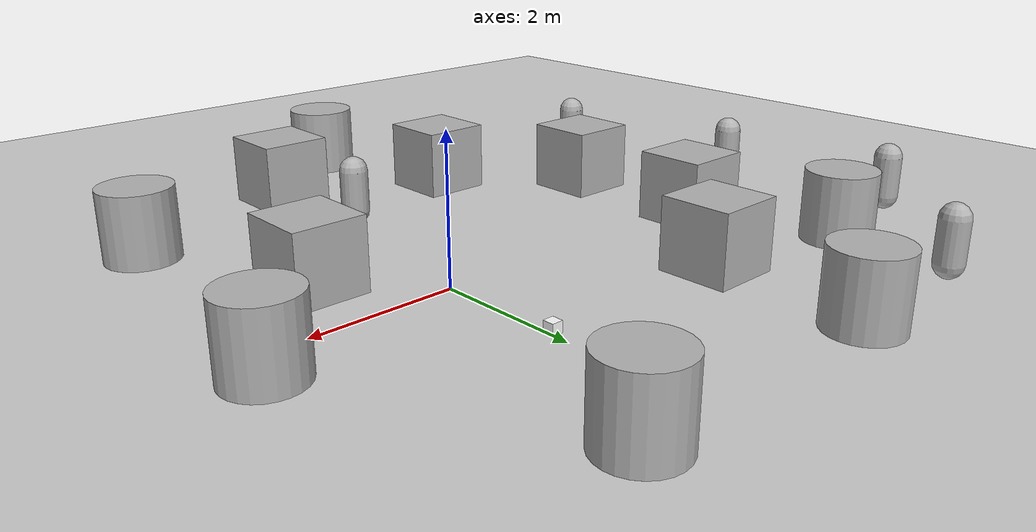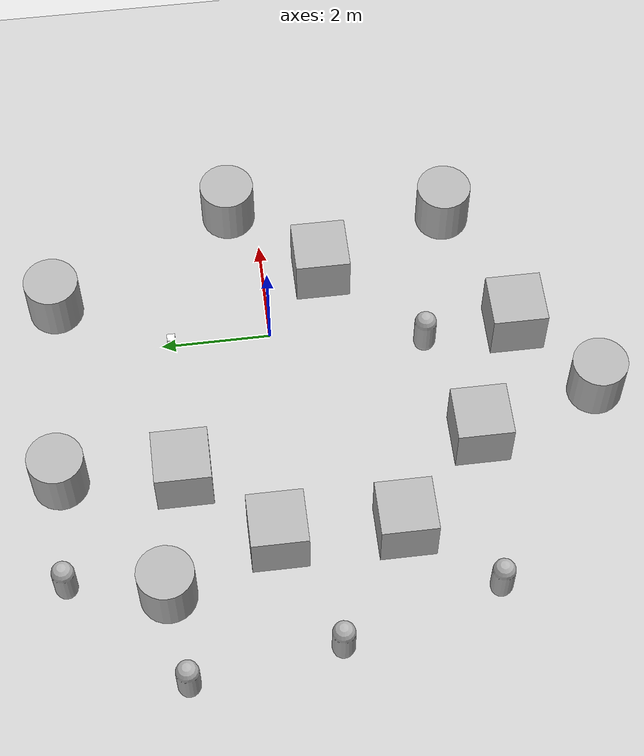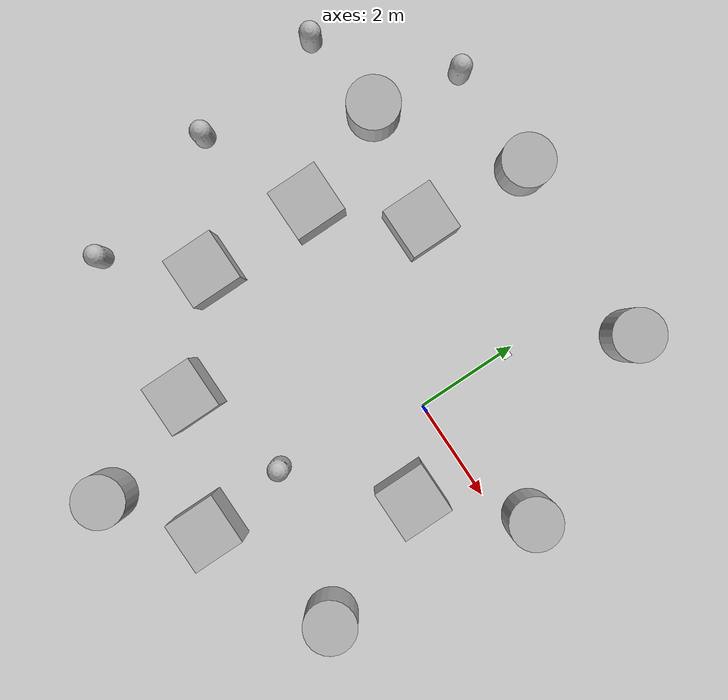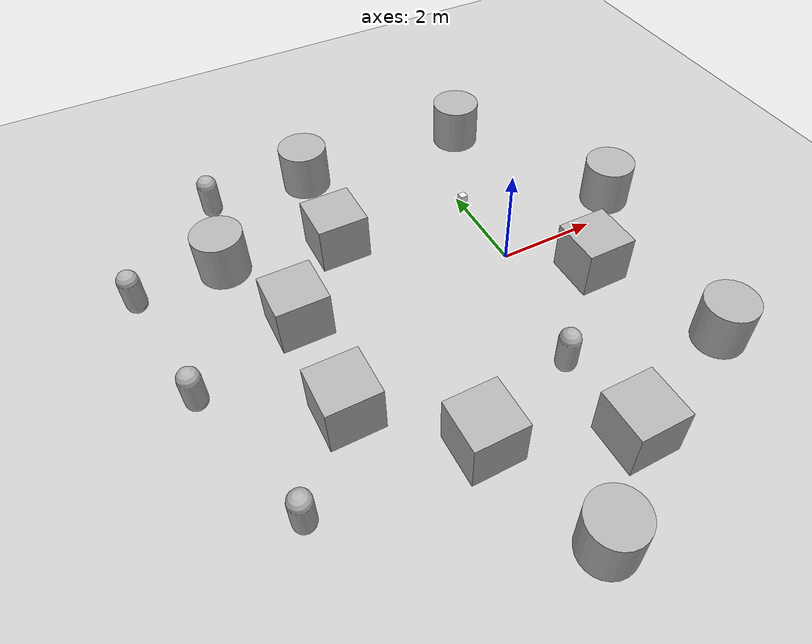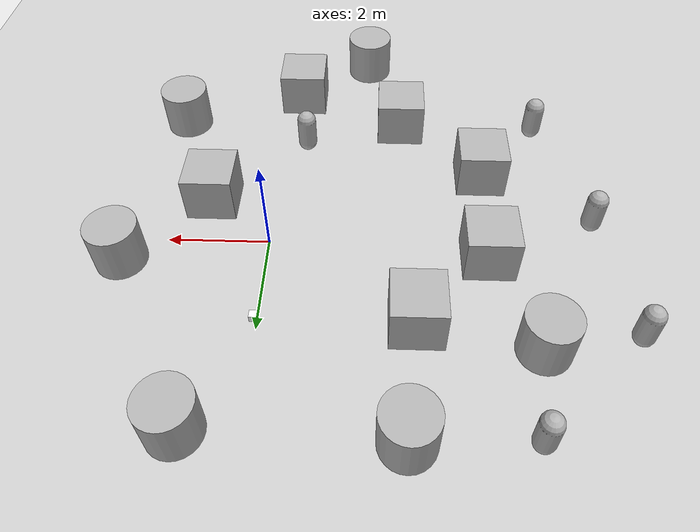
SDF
<sdf version='1.8'>
  <world name='empty'>
    <physics name='1ms' type='ignored'>
      <max_step_size>0.001</max_step_size>
      <real_time_factor>1</real_time_factor>
      <real_time_update_rate>1000</real_time_update_rate>
    </physics>
    <plugin
      filename="libignition-gazebo-physics-system.so"
      name="ignition::gazebo::systems::Physics">
    </plugin>
    <plugin
      filename="libignition-gazebo-user-commands-system.so"
      name="ignition::gazebo::systems::UserCommands">
    </plugin>
    <plugin
      filename="libignition-gazebo-scene-broadcaster-system.so"
      name="ignition::gazebo::systems::SceneBroadcaster">
    </plugin>
    <plugin
      filename="ignition-gazebo-imu-system"
      name="ignition::gazebo::systems::Imu">
    </plugin>
    <plugin
      filename="ignition-gazebo-sensors-system"
      name="ignition::gazebo::systems::Sensors">
      <render_engine>ogre2</render_engine>
    </plugin>
    <gravity>0 0 -9.8</gravity>
    <magnetic_field>6e-06 2.3e-05 -4.2e-05</magnetic_field>
    <atmosphere type='adiabatic'/>
    <scene>
      <ambient>0.4 0.4 0.4 1</ambient>
      <background>0.7 0.7 0.7 1</background>
      <shadows>true</shadows>
    </scene>
    <model name='ground_plane'>
      <static>true</static>
      <link name='link'>
        <collision name='collision'>
          <geometry>
            <plane>
              <normal>0 0 1</normal>
              <size>100 100</size>
            </plane>
          </geometry>
          <surface>
            <friction>
              <ode/>
            </friction>
            <bounce/>
            <contact/>
          </surface>
        </collision>
        <visual name='visual'>
          <geometry>
            <plane>
              <normal>0 0 1</normal>
              <size>100 100</size>
            </plane>
          </geometry>
          <material>
            <ambient>0.8 0.8 0.8 1</ambient>
            <diffuse>0.8 0.8 0.8 1</diffuse>
            <specular>0.8 0.8 0.8 1</specular>
          </material>
        </visual>
        <pose>0 0 0 0 -0 0</pose>
        <inertial>
          <pose>0 0 0 0 -0 0</pose>
          <mass>1</mass>
          <inertia>
            <ixx>1</ixx>
            <ixy>0</ixy>
            <ixz>0</ixz>
            <iyy>1</iyy>
            <iyz>0</iyz>
            <izz>1</izz>
          </inertia>
        </inertial>
        <enable_wind>false</enable_wind>
      </link>
      <pose>0 0 0 0 -0 0</pose>
      <self_collide>false</self_collide>
    </model>
    <model name='dock_box'>
      <pose>0.052212 1.82261 0.15 -0 0 0</pose>
      <link name='box_link'>
        <inertial>
          <inertia>
            <ixx>0.16666</ixx>
            <ixy>0</ixy>
            <ixz>0</ixz>
            <iyy>0.16666</iyy>
            <iyz>0</iyz>
            <izz>0.16666</izz>
          </inertia>
          <mass>1</mass>
          <pose>0 0 0 0 -0 0</pose>
        </inertial>
        <collision name='box_collision'>
          <geometry>
            <box>
              <size>0.15 0.15  0.15</size>
            </box>
          </geometry>
          <surface>
            <friction>
              <ode/>
            </friction>
            <bounce/>
            <contact/>
          </surface>
        </collision>
        <visual name='box_visual'>
          <geometry>
            <box>
              <size>0.15 0.15  0.15</size>
            </box>
          </geometry>
          <!-- ArUco marker ID 0 texture — dock target face -->
          <material>
            <ambient>1 1 1 1</ambient>
            <diffuse>1 1 1 1</diffuse>
            <specular>0.1 0.1 0.1 1</specular>
            <pbr>
              <metal>
                <albedo_map>/home/salah/Storage/ros2-test/src/yahboomcar_control_bringup/worlds/dock_marker.png</albedo_map>
                <metalness>0.0</metalness>
                <roughness>1.0</roughness>
              </metal>
            </pbr>
          </material>
        </visual>
        <pose>0 0 0 0 -0 0</pose>
        <enable_wind>false</enable_wind>
      </link>
      <static>true</static>
      <self_collide>false</self_collide>
    </model>
    <model name='box_2'>
      <pose>-2.84392 1.83052 0.5 0 -0 0</pose>
      <link name='box_link'>
        <inertial>
          <inertia>
            <ixx>0.16666</ixx>
            <ixy>0</ixy>
            <ixz>0</ixz>
            <iyy>0.16666</iyy>
            <iyz>0</iyz>
            <izz>0.16666</izz>
          </inertia>
          <mass>1</mass>
          <pose>0 0 0 0 -0 0</pose>
        </inertial>
        <collision name='box_collision'>
          <geometry>
            <box>
              <size>1 1 1</size>
            </box>
          </geometry>
          <surface>
            <friction>
              <ode/>
            </friction>
            <bounce/>
            <contact/>
          </surface>
        </collision>
        <visual name='box_visual'>
          <geometry>
            <box>
              <size>1 1 1</size>
            </box>
          </geometry>
          <material>
            <ambient>0.3 0.3 0.3 1</ambient>
            <diffuse>0.7 0.7 0.7 1</diffuse>
            <specular>1 1 1 1</specular>
          </material>
        </visual>
        <pose>0 0 0 0 -0 0</pose>
        <enable_wind>false</enable_wind>
      </link>
      <static>true</static>
      <self_collide>false</self_collide>
    </model>
    <model name='box_3'>
      <pose>-4.25235 0.303162 0.5 0 -0 0</pose>
      <link name='box_link'>
        <inertial>
          <inertia>
            <ixx>0.16666</ixx>
            <ixy>0</ixy>
            <ixz>0</ixz>
            <iyy>0.16666</iyy>
            <iyz>0</iyz>
            <izz>0.16666</izz>
          </inertia>
          <mass>1</mass>
          <pose>0 0 0 0 -0 0</pose>
        </inertial>
        <collision name='box_collision'>
          <geometry>
            <box>
              <size>1 1 1</size>
            </box>
          </geometry>
          <surface>
            <friction>
              <ode/>
            </friction>
            <bounce/>
            <contact/>
          </surface>
        </collision>
        <visual name='box_visual'>
          <geometry>
            <box>
              <size>1 1 1</size>
            </box>
          </geometry>
          <material>
            <ambient>0.3 0.3 0.3 1</ambient>
            <diffuse>0.7 0.7 0.7 1</diffuse>
            <specular>1 1 1 1</specular>
          </material>
        </visual>
        <pose>0 0 0 0 -0 0</pose>
        <enable_wind>false</enable_wind>
      </link>
      <static>true</static>
      <self_collide>false</self_collide>
    </model>
    <model name='box_4'>
      <pose>-4.2816 -1.91338 0.5 0 -0 0</pose>
      <link name='box_link'>
        <inertial>
          <inertia>
            <ixx>0.16666</ixx>
            <ixy>0</ixy>
            <ixz>0</ixz>
            <iyy>0.16666</iyy>
            <iyz>0</iyz>
            <izz>0.16666</izz>
          </inertia>
          <mass>1</mass>
          <pose>0 0 0 0 -0 0</pose>
        </inertial>
        <collision name='box_collision'>
          <geometry>
            <box>
              <size>1 1 1</size>
            </box>
          </geometry>
          <surface>
            <friction>
              <ode/>
            </friction>
            <bounce/>
            <contact/>
          </surface>
        </collision>
        <visual name='box_visual'>
          <geometry>
            <box>
              <size>1 1 1</size>
            </box>
          </geometry>
          <material>
            <ambient>0.3 0.3 0.3 1</ambient>
            <diffuse>0.7 0.7 0.7 1</diffuse>
            <specular>1 1 1 1</specular>
          </material>
        </visual>
        <pose>0 0 0 0 -0 0</pose>
        <enable_wind>false</enable_wind>
      </link>
      <static>true</static>
      <self_collide>false</self_collide>
    </model>
    <model name='box_5'>
      <pose>-2.60351 -3.49289 0.5 0 -0 0</pose>
      <link name='box_link'>
        <inertial>
          <inertia>
            <ixx>0.16666</ixx>
            <ixy>0</ixy>
            <ixz>0</ixz>
            <iyy>0.16666</iyy>
            <iyz>0</iyz>
            <izz>0.16666</izz>
          </inertia>
          <mass>1</mass>
          <pose>0 0 0 0 -0 0</pose>
        </inertial>
        <collision name='box_collision'>
          <geometry>
            <box>
              <size>1 1 1</size>
            </box>
          </geometry>
          <surface>
            <friction>
              <ode/>
            </friction>
            <bounce/>
            <contact/>
          </surface>
        </collision>
        <visual name='box_visual'>
          <geometry>
            <box>
              <size>1 1 1</size>
            </box>
          </geometry>
          <material>
            <ambient>0.3 0.3 0.3 1</ambient>
            <diffuse>0.7 0.7 0.7 1</diffuse>
            <specular>1 1 1 1</specular>
          </material>
        </visual>
        <pose>0 0 0 0 -0 0</pose>
        <enable_wind>false</enable_wind>
      </link>
      <static>true</static>
      <self_collide>false</self_collide>
    </model>
    <model name='box_6'>
      <pose>-0.350811 -4.4993 0.5 0 -0 0</pose>
      <link name='box_link'>
        <inertial>
          <inertia>
            <ixx>0.16666</ixx>
            <ixy>0</ixy>
            <ixz>0</ixz>
            <iyy>0.16666</iyy>
            <iyz>0</iyz>
            <izz>0.16666</izz>
          </inertia>
          <mass>1</mass>
          <pose>0 0 0 0 -0 0</pose>
        </inertial>
        <collision name='box_collision'>
          <geometry>
            <box>
              <size>1 1 1</size>
            </box>
          </geometry>
          <surface>
            <friction>
              <ode/>
            </friction>
            <bounce/>
            <contact/>
          </surface>
        </collision>
        <visual name='box_visual'>
          <geometry>
            <box>
              <size>1 1 1</size>
            </box>
          </geometry>
          <material>
            <ambient>0.3 0.3 0.3 1</ambient>
            <diffuse>0.7 0.7 0.7 1</diffuse>
            <specular>1 1 1 1</specular>
          </material>
        </visual>
        <pose>0 0 0 0 -0 0</pose>
        <enable_wind>false</enable_wind>
      </link>
      <static>true</static>
      <self_collide>false</self_collide>
    </model>
    <model name='box_7'>
      <pose>1.25544 -1.09131 0.5 0 -0 0</pose>
      <link name='box_link'>
        <inertial>
          <inertia>
            <ixx>0.16666</ixx>
            <ixy>0</ixy>
            <ixz>0</ixz>
            <iyy>0.16666</iyy>
            <iyz>0</iyz>
            <izz>0.16666</izz>
          </inertia>
          <mass>1</mass>
          <pose>0 0 0 0 -0 0</pose>
        </inertial>
        <collision name='box_collision'>
          <geometry>
            <box>
              <size>1 1 1</size>
            </box>
          </geometry>
          <surface>
            <friction>
              <ode/>
            </friction>
            <bounce/>
            <contact/>
          </surface>
        </collision>
        <visual name='box_visual'>
          <geometry>
            <box>
              <size>1 1 1</size>
            </box>
          </geometry>
          <material>
            <ambient>0.3 0.3 0.3 1</ambient>
            <diffuse>0.7 0.7 0.7 1</diffuse>
            <specular>1 1 1 1</specular>
          </material>
        </visual>
        <pose>0 0 0 0 -0 0</pose>
        <enable_wind>false</enable_wind>
      </link>
      <static>true</static>
      <self_collide>false</self_collide>
    </model>
    <model name='cylinder'>
      <pose>-1.86361 -5.74408 0.5 0 -0 0</pose>
      <link name='cylinder_link'>
        <inertial>
          <inertia>
            <ixx>0.14580000000000001</ixx>
            <ixy>0</ixy>
            <ixz>0</ixz>
            <iyy>0.14580000000000001</iyy>
            <iyz>0</iyz>
            <izz>0.125</izz>
          </inertia>
          <mass>1</mass>
          <pose>0 0 0 0 -0 0</pose>
        </inertial>
        <collision name='cylinder_collision'>
          <geometry>
            <cylinder>
              <radius>0.5</radius>
              <length>1</length>
            </cylinder>
          </geometry>
          <surface>
            <friction>
              <ode/>
            </friction>
            <bounce/>
            <contact/>
          </surface>
        </collision>
        <visual name='cylinder_visual'>
          <geometry>
            <cylinder>
              <radius>0.5</radius>
              <length>1</length>
            </cylinder>
          </geometry>
          <material>
            <ambient>0.3 0.3 0.3 1</ambient>
            <diffuse>0.7 0.7 0.7 1</diffuse>
            <specular>1 1 1 1</specular>
          </material>
        </visual>
        <pose>0 0 0 0 -0 0</pose>
        <enable_wind>false</enable_wind>
      </link>
      <static>true</static>
      <self_collide>false</self_collide>
    </model>
    <model name='cylinder_1'>
      <pose>2.2825 -3.56326 0.5 0 -0 0</pose>
      <link name='cylinder_link'>
        <inertial>
          <inertia>
            <ixx>0.14580000000000001</ixx>
            <ixy>0</ixy>
            <ixz>0</ixz>
            <iyy>0.14580000000000001</iyy>
            <iyz>0</iyz>
            <izz>0.125</izz>
          </inertia>
          <mass>1</mass>
          <pose>0 0 0 0 -0 0</pose>
        </inertial>
        <collision name='cylinder_collision'>
          <geometry>
            <cylinder>
              <radius>0.5</radius>
              <length>1</length>
            </cylinder>
          </geometry>
          <surface>
            <friction>
              <ode/>
            </friction>
            <bounce/>
            <contact/>
          </surface>
        </collision>
        <visual name='cylinder_visual'>
          <geometry>
            <cylinder>
              <radius>0.5</radius>
              <length>1</length>
            </cylinder>
          </geometry>
          <material>
            <ambient>0.3 0.3 0.3 1</ambient>
            <diffuse>0.7 0.7 0.7 1</diffuse>
            <specular>1 1 1 1</specular>
          </material>
        </visual>
        <pose>0 0 0 0 -0 0</pose>
        <enable_wind>false</enable_wind>
      </link>
      <static>true</static>
      <self_collide>false</self_collide>
    </model>
    <model name='cylinder_2'>
      <pose>2.79456 0.506797 0.5 0 -0 0</pose>
      <link name='cylinder_link'>
        <inertial>
          <inertia>
            <ixx>0.14580000000000001</ixx>
            <ixy>0</ixy>
            <ixz>0</ixz>
            <iyy>0.14580000000000001</iyy>
            <iyz>0</iyz>
            <izz>0.125</izz>
          </inertia>
          <mass>1</mass>
          <pose>0 0 0 0 -0 0</pose>
        </inertial>
        <collision name='cylinder_collision'>
          <geometry>
            <cylinder>
              <radius>0.5</radius>
              <length>1</length>
            </cylinder>
          </geometry>
          <surface>
            <friction>
              <ode/>
            </friction>
            <bounce/>
            <contact/>
          </surface>
        </collision>
        <visual name='cylinder_visual'>
          <geometry>
            <cylinder>
              <radius>0.5</radius>
              <length>1</length>
            </cylinder>
          </geometry>
          <material>
            <ambient>0.3 0.3 0.3 1</ambient>
            <diffuse>0.7 0.7 0.7 1</diffuse>
            <specular>1 1 1 1</specular>
          </material>
        </visual>
        <pose>0 0 0 0 -0 0</pose>
        <enable_wind>false</enable_wind>
      </link>
      <static>true</static>
      <self_collide>false</self_collide>
    </model>
    <model name='cylinder_3'>
      <pose>1.0244 3.89878 0.5 0 -0 0</pose>
      <link name='cylinder_link'>
        <inertial>
          <inertia>
            <ixx>0.14580000000000001</ixx>
            <ixy>0</ixy>
            <ixz>0</ixz>
            <iyy>0.14580000000000001</iyy>
            <iyz>0</iyz>
            <izz>0.125</izz>
          </inertia>
          <mass>1</mass>
          <pose>0 0 0 0 -0 0</pose>
        </inertial>
        <collision name='cylinder_collision'>
          <geometry>
            <cylinder>
              <radius>0.5</radius>
              <length>1</length>
            </cylinder>
          </geometry>
          <surface>
            <friction>
              <ode/>
            </friction>
            <bounce/>
            <contact/>
          </surface>
        </collision>
        <visual name='cylinder_visual'>
          <geometry>
            <cylinder>
              <radius>0.5</radius>
              <length>1</length>
            </cylinder>
          </geometry>
          <material>
            <ambient>0.3 0.3 0.3 1</ambient>
            <diffuse>0.7 0.7 0.7 1</diffuse>
            <specular>1 1 1 1</specular>
          </material>
        </visual>
        <pose>0 0 0 0 -0 0</pose>
        <enable_wind>false</enable_wind>
      </link>
      <static>true</static>
      <self_collide>false</self_collide>
    </model>
    <model name='cylinder_4'>
      <pose>-2.6529 3.99508 0.5 0 -0 0</pose>
      <link name='cylinder_link'>
        <inertial>
          <inertia>
            <ixx>0.14580000000000001</ixx>
            <ixy>0</ixy>
            <ixz>0</ixz>
            <iyy>0.14580000000000001</iyy>
            <iyz>0</iyz>
            <izz>0.125</izz>
          </inertia>
          <mass>1</mass>
          <pose>0 0 0 0 -0 0</pose>
        </inertial>
        <collision name='cylinder_collision'>
          <geometry>
            <cylinder>
              <radius>0.5</radius>
              <length>1</length>
            </cylinder>
          </geometry>
          <surface>
            <friction>
              <ode/>
            </friction>
            <bounce/>
            <contact/>
          </surface>
        </collision>
        <visual name='cylinder_visual'>
          <geometry>
            <cylinder>
              <radius>0.5</radius>
              <length>1</length>
            </cylinder>
          </geometry>
          <material>
            <ambient>0.3 0.3 0.3 1</ambient>
            <diffuse>0.7 0.7 0.7 1</diffuse>
            <specular>1 1 1 1</specular>
          </material>
        </visual>
        <pose>0 0 0 0 -0 0</pose>
        <enable_wind>false</enable_wind>
      </link>
      <static>true</static>
      <self_collide>false</self_collide>
    </model>
    <model name='cylinder_5'>
      <pose>-5.03786 2.2708 0.5 0 -0 0</pose>
      <link name='cylinder_link'>
        <inertial>
          <inertia>
            <ixx>0.14580000000000001</ixx>
            <ixy>0</ixy>
            <ixz>0</ixz>
            <iyy>0.14580000000000001</iyy>
            <iyz>0</iyz>
            <izz>0.125</izz>
          </inertia>
          <mass>1</mass>
          <pose>0 0 0 0 -0 0</pose>
        </inertial>
        <collision name='cylinder_collision'>
          <geometry>
            <cylinder>
              <radius>0.5</radius>
              <length>1</length>
            </cylinder>
          </geometry>
          <surface>
            <friction>
              <ode/>
            </friction>
            <bounce/>
            <contact/>
          </surface>
        </collision>
        <visual name='cylinder_visual'>
          <geometry>
            <cylinder>
              <radius>0.5</radius>
              <length>1</length>
            </cylinder>
          </geometry>
          <material>
            <ambient>0.3 0.3 0.3 1</ambient>
            <diffuse>0.7 0.7 0.7 1</diffuse>
            <specular>1 1 1 1</specular>
          </material>
        </visual>
        <pose>0 0 0 0 -0 0</pose>
        <enable_wind>false</enable_wind>
      </link>
      <static>true</static>
      <self_collide>false</self_collide>
    </model>
    <model name='capsule_1'>
      <pose>-0.541699 -2.80438 0.5 0 -0 0</pose>
      <link name='capsule_link'>
        <inertial>
          <inertia>
            <ixx>0.074153999999999998</ixx>
            <ixy>0</ixy>
            <ixz>0</ixz>
            <iyy>0.074153999999999998</iyy>
            <iyz>0</iyz>
            <izz>0.018769000000000001</izz>
          </inertia>
          <mass>1</mass>
          <pose>0 0 0 0 -0 0</pose>
        </inertial>
        <collision name='capsule_collision'>
          <geometry>
            <capsule>
              <radius>0.20000000000000001</radius>
              <length>0.59999999999999998</length>
            </capsule>
          </geometry>
          <surface>
            <friction>
              <ode/>
            </friction>
            <bounce/>
            <contact/>
          </surface>
        </collision>
        <visual name='capsule_visual'>
          <geometry>
            <capsule>
              <radius>0.20000000000000001</radius>
              <length>0.59999999999999998</length>
            </capsule>
          </geometry>
          <material>
            <ambient>0.3 0.3 0.3 1</ambient>
            <diffuse>0.7 0.7 0.7 1</diffuse>
            <specular>1 1 1 1</specular>
          </material>
        </visual>
        <pose>0 0 0 0 -0 0</pose>
        <enable_wind>false</enable_wind>
      </link>
      <static>true</static>
      <self_collide>false</self_collide>
    </model>
    <model name='capsule_2'>
      <pose>-5.58408 -3.38694 0.5 0 -0 0</pose>
      <link name='capsule_link'>
        <inertial>
          <inertia>
            <ixx>0.074153999999999998</ixx>
            <ixy>0</ixy>
            <ixz>0</ixz>
            <iyy>0.074153999999999998</iyy>
            <iyz>0</iyz>
            <izz>0.018769000000000001</izz>
          </inertia>
          <mass>1</mass>
          <pose>0 0 0 0 -0 0</pose>
        </inertial>
        <collision name='capsule_collision'>
          <geometry>
            <capsule>
              <radius>0.20000000000000001</radius>
              <length>0.59999999999999998</length>
            </capsule>
          </geometry>
          <surface>
            <friction>
              <ode/>
            </friction>
            <bounce/>
            <contact/>
          </surface>
        </collision>
        <visual name='capsule_visual'>
          <geometry>
            <capsule>
              <radius>0.20000000000000001</radius>
              <length>0.59999999999999998</length>
            </capsule>
          </geometry>
          <material>
            <ambient>0.3 0.3 0.3 1</ambient>
            <diffuse>0.7 0.7 0.7 1</diffuse>
            <specular>1 1 1 1</specular>
          </material>
        </visual>
        <pose>0 0 0 0 -0 0</pose>
        <enable_wind>false</enable_wind>
      </link>
      <static>true</static>
      <self_collide>false</self_collide>
    </model>
    <model name='capsule_3'>
      <pose>-6.38377 -0.572144 0.5 0 -0 0</pose>
      <link name='capsule_link'>
        <inertial>
          <inertia>
            <ixx>0.074153999999999998</ixx>
            <ixy>0</ixy>
            <ixz>0</ixz>
            <iyy>0.074153999999999998</iyy>
            <iyz>0</iyz>
            <izz>0.018769000000000001</izz>
          </inertia>
          <mass>1</mass>
          <pose>0 0 0 0 -0 0</pose>
        </inertial>
        <collision name='capsule_collision'>
          <geometry>
            <capsule>
              <radius>0.20000000000000001</radius>
              <length>0.59999999999999998</length>
            </capsule>
          </geometry>
          <surface>
            <friction>
              <ode/>
            </friction>
            <bounce/>
            <contact/>
          </surface>
        </collision>
        <visual name='capsule_visual'>
          <geometry>
            <capsule>
              <radius>0.20000000000000001</radius>
              <length>0.59999999999999998</length>
            </capsule>
          </geometry>
          <material>
            <ambient>0.3 0.3 0.3 1</ambient>
            <diffuse>0.7 0.7 0.7 1</diffuse>
            <specular>1 1 1 1</specular>
          </material>
        </visual>
        <pose>0 0 0 0 -0 0</pose>
        <enable_wind>false</enable_wind>
      </link>
      <static>true</static>
      <self_collide>false</self_collide>
    </model>
    <model name='capsule_4'>
      <pose>-6.76319 2.04927 0.5 0 -0 0</pose>
      <link name='capsule_link'>
        <inertial>
          <inertia>
            <ixx>0.074153999999999998</ixx>
            <ixy>0</ixy>
            <ixz>0</ixz>
            <iyy>0.074153999999999998</iyy>
            <iyz>0</iyz>
            <izz>0.018769000000000001</izz>
          </inertia>
          <mass>1</mass>
          <pose>0 0 0 0 -0 0</pose>
        </inertial>
        <collision name='capsule_collision'>
          <geometry>
            <capsule>
              <radius>0.20000000000000001</radius>
              <length>0.59999999999999998</length>
            </capsule>
          </geometry>
          <surface>
            <friction>
              <ode/>
            </friction>
            <bounce/>
            <contact/>
          </surface>
        </collision>
        <visual name='capsule_visual'>
          <geometry>
            <capsule>
              <radius>0.20000000000000001</radius>
              <length>0.59999999999999998</length>
            </capsule>
          </geometry>
          <material>
            <ambient>0.3 0.3 0.3 1</ambient>
            <diffuse>0.7 0.7 0.7 1</diffuse>
            <specular>1 1 1 1</specular>
          </material>
        </visual>
        <pose>0 0 0 0 -0 0</pose>
        <enable_wind>false</enable_wind>
      </link>
      <static>true</static>
      <self_collide>false</self_collide>
    </model>
    <model name='capsule_5'>
      <pose>-4.74905 3.97979 0.5 0 -0 0</pose>
      <link name='capsule_link'>
        <inertial>
          <inertia>
            <ixx>0.074153999999999998</ixx>
            <ixy>0</ixy>
            <ixz>0</ixz>
            <iyy>0.074153999999999998</iyy>
            <iyz>0</iyz>
            <izz>0.018769000000000001</izz>
          </inertia>
          <mass>1</mass>
          <pose>0 0 0 0 -0 0</pose>
        </inertial>
        <collision name='capsule_collision'>
          <geometry>
            <capsule>
              <radius>0.20000000000000001</radius>
              <length>0.59999999999999998</length>
            </capsule>
          </geometry>
          <surface>
            <friction>
              <ode/>
            </friction>
            <bounce/>
            <contact/>
          </surface>
        </collision>
        <visual name='capsule_visual'>
          <geometry>
            <capsule>
              <radius>0.20000000000000001</radius>
              <length>0.59999999999999998</length>
            </capsule>
          </geometry>
          <material>
            <ambient>0.3 0.3 0.3 1</ambient>
            <diffuse>0.7 0.7 0.7 1</diffuse>
            <specular>1 1 1 1</specular>
          </material>
        </visual>
        <pose>0 0 0 0 -0 0</pose>
        <enable_wind>false</enable_wind>
      </link>
      <static>true</static>
      <self_collide>false</self_collide>
    </model>
    <light name='sun' type='directional'>
      <pose>0 0 10 0 -0 0</pose>
      <cast_shadows>true</cast_shadows>
      <intensity>1</intensity>
      <direction>-0.5 0.1 -0.9</direction>
      <diffuse>0.8 0.8 0.8 1</diffuse>
      <specular>0.2 0.2 0.2 1</specular>
      <attenuation>
        <range>1000</range>
        <linear>0.01</linear>
        <constant>0.90000000000000002</constant>
        <quadratic>0.001</quadratic>
      </attenuation>
      <spot>
        <inner_angle>0</inner_angle>
        <outer_angle>0</outer_angle>
        <falloff>0</falloff>
      </spot>
    </light>
  </world>
</sdf>
